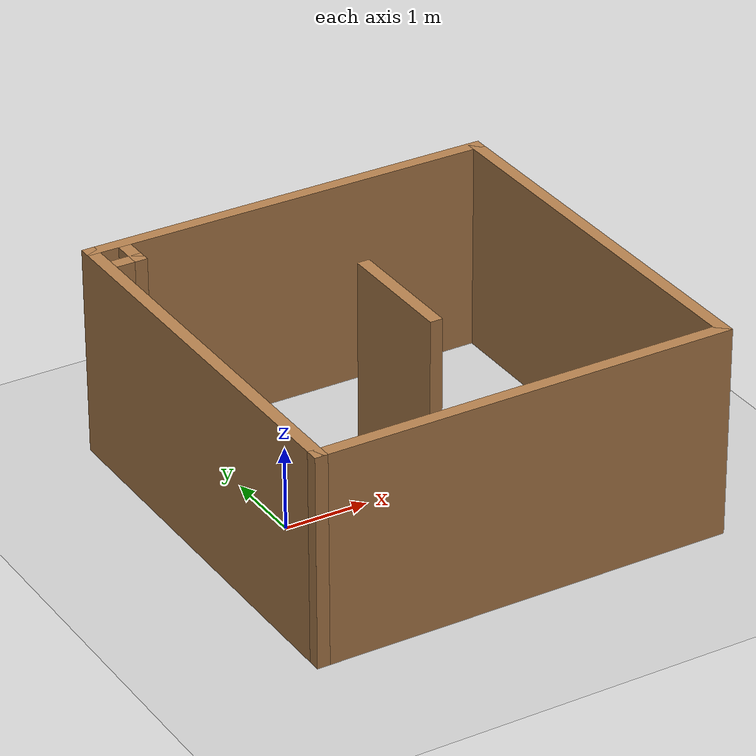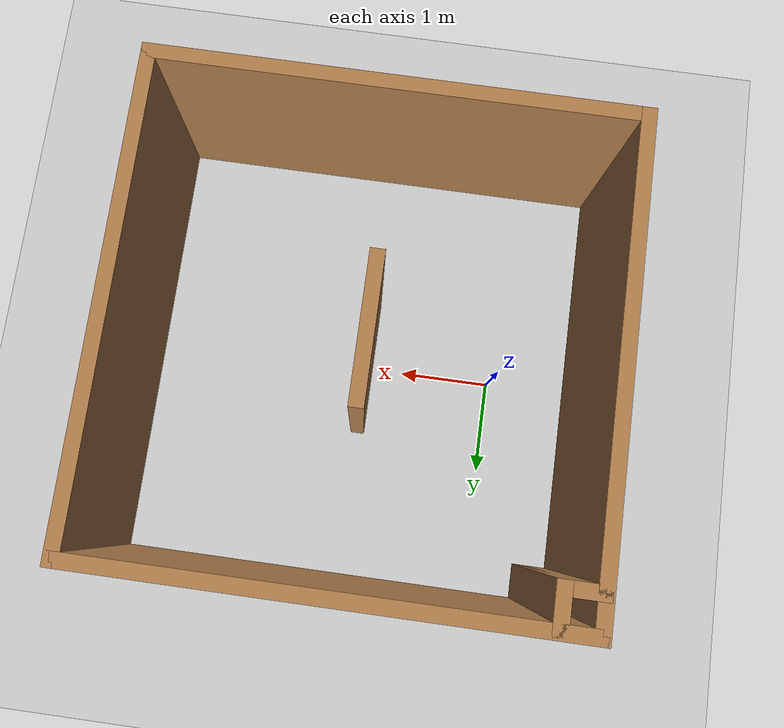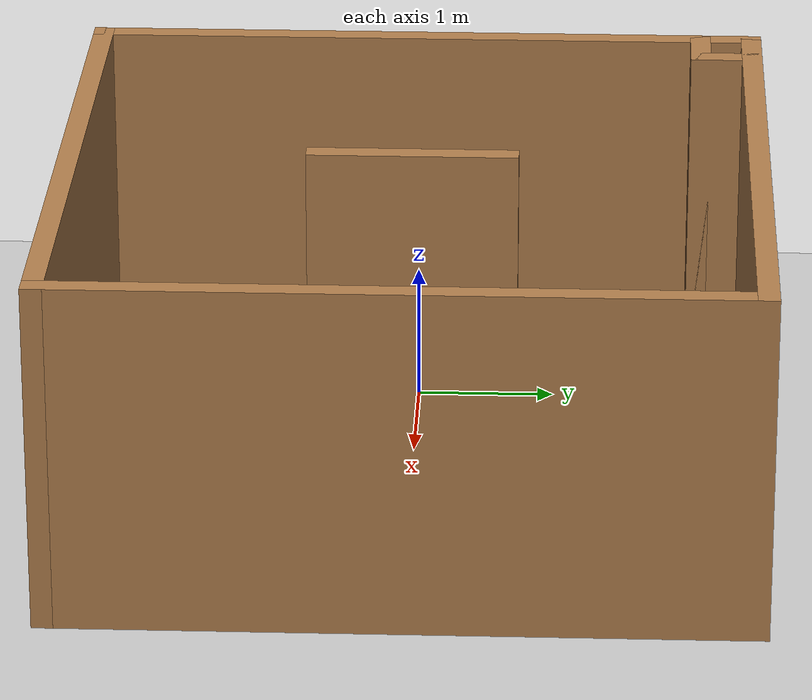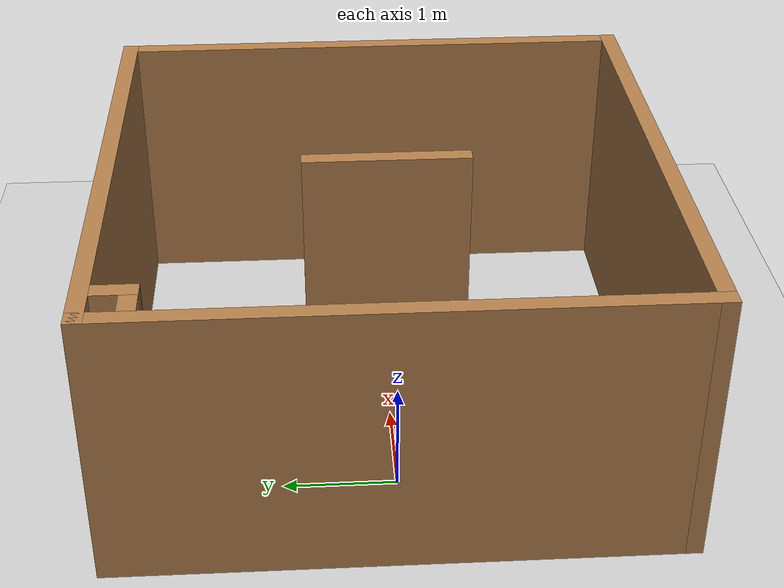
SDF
<sdf version="1.7">
 <world name="default">
  <light name="sun" type="directional">
   <pose>0 0 10 0 -0 0</pose>
   <diffuse>0.8 0.8 0.8 1</diffuse>
   <specular>0.2 0.2 0.2 1</specular>
   <attenuation>
    <range>1000</range>
    <constant>0.9</constant>
    <linear>0.01</linear>
    <quadratic>0.001</quadratic>
   </attenuation>
   <direction>-0.5 0.1 -0.9</direction>
   <spot><inner_angle>0</inner_angle><outer_angle>0</outer_angle><falloff>0</falloff></spot>
  </light>
  <model name="ground_plane">
   <static>1</static>
   <link name="link">
    <collision name="collision">
     <geometry><plane><normal>0 0 1</normal><size>100 100</size></plane></geometry>
     <surface><friction><ode><mu>100</mu><mu2>50</mu2></ode></friction></surface>
    </collision>
    <visual name="visual">
     <cast_shadows>0</cast_shadows>
     <geometry><plane><normal>0 0 1</normal><size>100 100</size></plane></geometry>
     <material>
      <script><uri>file://media/materials/scripts/gazebo.material</uri><name>Gazebo/Grey</name></script>
     </material>
    </visual>
   </link>
  </model>
  <gravity>0 0 -9.8</gravity>
  <magnetic_field>6e-06 2.3e-05 -4.2e-05</magnetic_field>
  <atmosphere type="adiabatic"/>
  <physics type="ode">
   <max_step_size>0.001</max_step_size>
   <real_time_factor>1</real_time_factor>
   <real_time_update_rate>1000</real_time_update_rate>
  </physics>
  <scene><ambient>0.4 0.4 0.4 1</ambient><background>0.7 0.7 0.7 1</background><shadows>1</shadows></scene>
  <audio><device>default</device></audio>
  <spherical_coordinates>
   <surface_model>EARTH_WGS84</surface_model>
   <latitude_deg>0</latitude_deg>
   <longitude_deg>0</longitude_deg>
   <elevation>0</elevation>
   <heading_deg>0</heading_deg>
  </spherical_coordinates>
  <model name="training_env_one_object_2">
   <pose>1.45624 0.25724 0 0 -0 0</pose>
   <link name="Wall_10">
    <collision name="Wall_10_Collision">
     <geometry><box><size>5 0.15 2.5</size></box></geometry>
     <pose>0 0 1.25 0 -0 0</pose>
    </collision>
    <visual name="Wall_10_Visual">
     <pose>0 0 1.25 0 -0 0</pose>
     <geometry><box><size>5 0.15 2.5</size></box></geometry>
     <material>
      <script><uri>file://media/materials/scripts/gazebo.material</uri><name>Gazebo/Wood</name></script>
      <ambient>1 1 1 1</ambient>
     </material>
     <meta><layer>0</layer></meta>
    </visual>
    <pose>-0 -2.66353 0 0 -0 3.14159</pose>
   </link>
   <link name="Wall_11">
    <collision name="Wall_11_Collision">
     <geometry><box><size>5 0.15 2.5</size></box></geometry>
     <pose>0 0 1.25 0 -0 0</pose>
    </collision>
    <visual name="Wall_11_Visual">
     <pose>0 0 1.25 0 -0 0</pose>
     <geometry><box><size>5 0.15 2.5</size></box></geometry>
     <material>
      <script><uri>file://media/materials/scripts/gazebo.material</uri><name>Gazebo/Wood</name></script>
      <ambient>1 1 1 1</ambient>
     </material>
     <meta><layer>0</layer></meta>
    </visual>
    <pose>-2.425 -0.238531 0 0 -0 1.5708</pose>
   </link>
   <link name="Wall_18">
    <collision name="Wall_18_Collision">
     <geometry><box><size>0.5 0.15 2.5</size></box></geometry>
     <pose>0 0 1.25 0 -0 0</pose>
    </collision>
    <visual name="Wall_18_Visual">
     <pose>0 0 1.25 0 -0 0</pose>
     <geometry><box><size>0.5 0.15 2.5</size></box></geometry>
     <material>
      <script><uri>file://media/materials/scripts/gazebo.material</uri><name>Gazebo/Wood</name></script>
      <ambient>1 1 1 1</ambient>
     </material>
     <meta><layer>0</layer></meta>
    </visual>
    <pose>-2.2314 1.8098 0 0 -0 0</pose>
   </link>
   <link name="Wall_19">
    <collision name="Wall_19_Collision">
     <geometry><box><size>0.5 0.15 2.5</size></box></geometry>
     <pose>0 0 1.25 0 -0 0</pose>
    </collision>
    <visual name="Wall_19_Visual">
     <pose>0 0 1.25 0 -0 0</pose>
     <geometry><box><size>0.5 0.15 2.5</size></box></geometry>
     <material>
      <script><uri>file://media/materials/scripts/gazebo.material</uri><name>Gazebo/Wood</name></script>
      <ambient>1 1 1 1</ambient>
     </material>
     <meta><layer>0</layer></meta>
    </visual>
    <pose>-2.0564 1.9848 0 0 -0 1.5708</pose>
   </link>
   <link name="Wall_43">
    <collision name="Wall_43_Collision">
     <geometry><box><size>1.5 0.15 2.5</size></box></geometry>
     <pose>0 0 1.25 0 -0 0</pose>
    </collision>
    <visual name="Wall_43_Visual">
     <pose>0 0 1.25 0 -0 0</pose>
     <geometry><box><size>1.5 0.15 2.5</size></box></geometry>
     <material>
      <script><uri>file://media/materials/scripts/gazebo.material</uri><name>Gazebo/Wood</name></script>
      <ambient>1 1 1 1</ambient>
     </material>
     <meta><layer>0</layer></meta>
    </visual>
    <pose>-0.036943 -0.250237 0 0 -0 -1.5708</pose>
   </link>
   <link name="Wall_8">
    <collision name="Wall_8_Collision">
     <geometry><box><size>5 0.15 2.5</size></box></geometry>
     <pose>0 0 1.25 0 -0 0</pose>
    </collision>
    <visual name="Wall_8_Visual">
     <pose>0 0 1.25 0 -0 0</pose>
     <geometry><box><size>5 0.15 2.5</size></box></geometry>
     <material>
      <script><uri>file://media/materials/scripts/gazebo.material</uri><name>Gazebo/Wood</name></script>
      <ambient>1 1 1 1</ambient>
     </material>
     <meta><layer>0</layer></meta>
    </visual>
    <pose>-0 2.18647 0 0 -0 0</pose>
   </link>
   <link name="Wall_9">
    <collision name="Wall_9_Collision">
     <geometry><box><size>5 0.15 2.5</size></box></geometry>
     <pose>0 0 1.25 0 -0 0</pose>
    </collision>
    <visual name="Wall_9_Visual">
     <pose>0 0 1.25 0 -0 0</pose>
     <geometry><box><size>5 0.15 2.5</size></box></geometry>
     <material>
      <script><uri>file://media/materials/scripts/gazebo.material</uri><name>Gazebo/Wood</name></script>
      <ambient>1 1 1 1</ambient>
     </material>
     <meta><layer>0</layer></meta>
    </visual>
    <pose>2.425 -0.238531 0 0 -0 -1.5708</pose>
   </link>
   <static>1</static>
  </model>
 </world>
</sdf>
